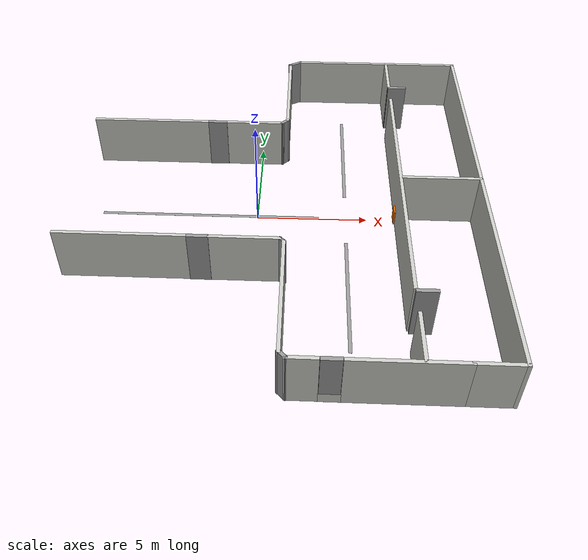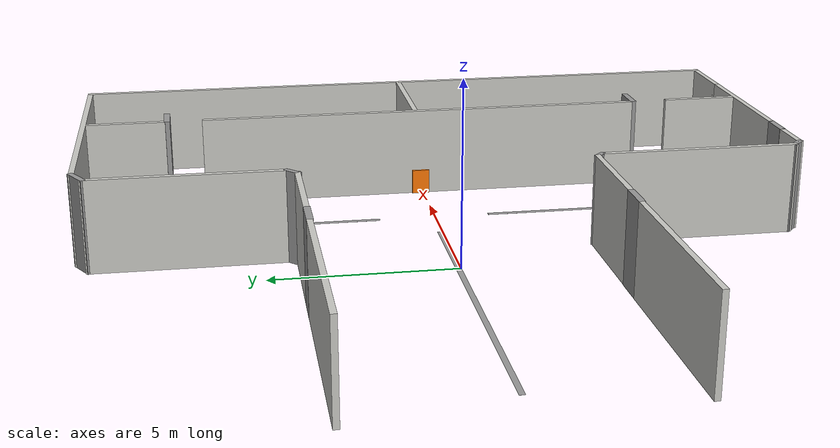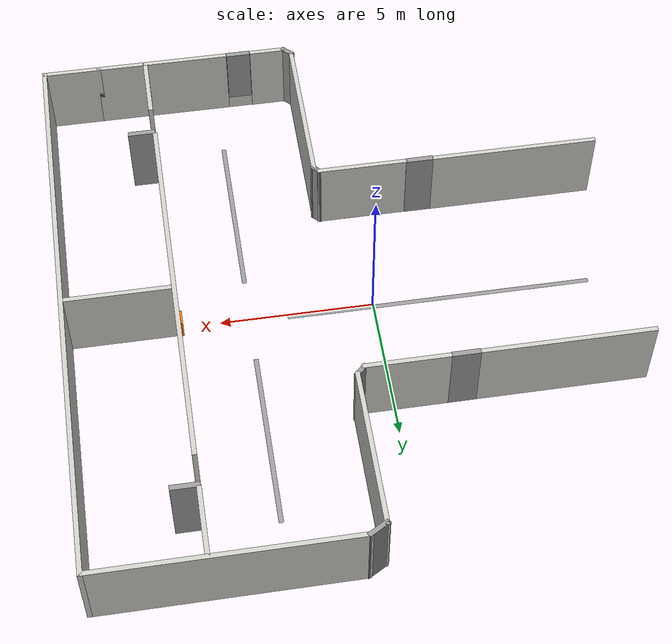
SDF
<?xml version='1.0'?>
<sdf version='1.7'>
  <model name='hosp.world'>
    <pose>0.907925 0.036457 0 0 -0 0</pose>
    <link name='Door_0'>
      <collision name='Door_0_Collision'>
        <geometry>
          <box>
            <size>0.9 0.17 2.5</size>
          </box>
        </geometry>
        <pose>0 0 1.25 0 -0 0</pose>
      </collision>
      <visual name='Door_0_Visual'>
        <pose>0 0 1.25 0 -0 0</pose>
        <geometry>
          <box>
            <size>0.9 0.17 2.5</size>
          </box>
        </geometry>
        <material>
          <script>
            <uri>file://media/materials/scripts/gazebo.material</uri>
            <name>Gazebo/Grey</name>
          </script>
        </material>
      </visual>
      <pose>-3.0738 -3.88285 0 0 -0 0</pose>
    </link>
    <link name='Door_1'>
      <collision name='Door_1_Collision'>
        <geometry>
          <box>
            <size>0.9 0.17 2.5</size>
          </box>
        </geometry>
        <pose>0 0 1.25 0 -0 0</pose>
      </collision>
      <visual name='Door_1_Visual'>
        <pose>0 0 1.25 0 -0 0</pose>
        <geometry>
          <box>
            <size>0.9 0.17 2.5</size>
          </box>
        </geometry>
        <material>
          <script>
            <uri>file://media/materials/scripts/gazebo.material</uri>
            <name>Gazebo/Grey</name>
          </script>
        </material>
      </visual>
      <pose>-3.03527 4.01633 0 0 -0 0</pose>
    </link>
    <link name='Door_2'>
      <collision name='Door_2_Collision'>
        <geometry>
          <box>
            <size>0.9 0.17 2.5</size>
          </box>
        </geometry>
        <pose>0 0 1.25 0 -0 0</pose>
      </collision>
      <visual name='Door_2_Visual'>
        <pose>0 0 1.25 0 -0 0</pose>
        <geometry>
          <box>
            <size>0.9 0.17 2.5</size>
          </box>
        </geometry>
        <material>
          <script>
            <uri>file://media/materials/scripts/gazebo.material</uri>
            <name>Gazebo/Grey</name>
          </script>
        </material>
      </visual>
      <pose>5.88274 -6.45803 0 0 -0 0</pose>
    </link>
    <link name='Door_3'>
      <collision name='Door_3_Collision'>
        <geometry>
          <box>
            <size>0.9 0.17 2.5</size>
          </box>
        </geometry>
        <pose>0 0 1.25 0 -0 0</pose>
      </collision>
      <visual name='Door_3_Visual'>
        <pose>0 0 1.25 0 -0 0</pose>
        <geometry>
          <box>
            <size>0.9 0.17 2.5</size>
          </box>
        </geometry>
        <material>
          <script>
            <uri>file://media/materials/scripts/gazebo.material</uri>
            <name>Gazebo/Grey</name>
          </script>
        </material>
      </visual>
      <pose>5.82192 7.34292 0 0 -0 0</pose>
    </link>
    <link name='Wall_0'>
      <collision name='Wall_0_Collision'>
        <geometry>
          <box>
            <size>5.5 0.15 2.5</size>
          </box>
        </geometry>
        <pose>0 0 1.25 0 -0 0</pose>
      </collision>
      <visual name='Wall_0_Visual'>
        <pose>0 0 1.25 0 -0 0</pose>
        <geometry>
          <box>
            <size>5.5 0.15 2.5</size>
          </box>
        </geometry>
        <material>
          <script>
            <uri>file://media/materials/scripts/gazebo.material</uri>
            <name>Gazebo/CeilingTiled</name>
          </script>
          <ambient>1 1 1 1</ambient>
        </material>
        <meta>
          <layer>0</layer>
        </meta>
      </visual>
      <pose>-6.27423 -3.87046 0 0 -0 0</pose>
    </link>
    <link name='Wall_11'>
      <collision name='Wall_11_Collision'>
        <geometry>
          <box>
            <size>5.5 0.15 2.5</size>
          </box>
        </geometry>
        <pose>0 0 1.25 0 -0 0</pose>
      </collision>
      <visual name='Wall_11_Visual'>
        <pose>0 0 1.25 0 -0 0</pose>
        <geometry>
          <box>
            <size>5.5 0.15 2.5</size>
          </box>
        </geometry>
        <material>
          <script>
            <uri>file://media/materials/scripts/gazebo.material</uri>
            <name>Gazebo/CeilingTiled</name>
          </script>
          <ambient>1 1 1 1</ambient>
        </material>
        <meta>
          <layer>0</layer>
        </meta>
      </visual>
      <pose>0.424387 -6.74646 0 0 -0 -1.5708</pose>
    </link>
    <link name='Wall_13'>
      <collision name='Wall_13_Collision'>
        <geometry>
          <box>
            <size>0.5 0.15 2.5</size>
          </box>
        </geometry>
        <pose>0 0 1.25 0 -0 0</pose>
      </collision>
      <visual name='Wall_13_Visual'>
        <pose>0 0 1.25 0 -0 0</pose>
        <geometry>
          <box>
            <size>0.5 0.15 2.5</size>
          </box>
        </geometry>
        <material>
          <script>
            <uri>file://media/materials/scripts/gazebo.material</uri>
            <name>Gazebo/Grey</name>
          </script>
          <ambient>1 1 1 1</ambient>
        </material>
        <meta>
          <layer>0</layer>
        </meta>
      </visual>
      <pose>0.548131 -9.54521 0 0 -0 -0.785398</pose>
    </link>
    <link name='Wall_14'>
      <collision name='Wall_14_Collision'>
        <geometry>
          <box>
            <size>1.25 0.15 2.5</size>
          </box>
        </geometry>
        <pose>0 0 1.25 0 -0 0</pose>
      </collision>
      <visual name='Wall_14_Visual'>
        <pose>0 0 1.25 0 -0 0</pose>
        <geometry>
          <box>
            <size>1.25 0.15 2.5</size>
          </box>
        </geometry>
        <material>
          <script>
            <uri>file://media/materials/scripts/gazebo.material</uri>
            <name>Gazebo/CeilingTiled</name>
          </script>
          <ambient>1 1 1 1</ambient>
        </material>
        <meta>
          <layer>0</layer>
        </meta>
      </visual>
      <pose>1.22188 -9.66895 0 0 -0 0</pose>
    </link>
    <link name='Wall_17'>
      <collision name='Wall_17_Collision'>
        <geometry>
          <box>
            <size>4.5 0.15 2.5</size>
          </box>
        </geometry>
        <pose>0 0 1.25 0 -0 0</pose>
      </collision>
      <visual name='Wall_17_Visual'>
        <pose>0 0 1.25 0 -0 0</pose>
        <geometry>
          <box>
            <size>4.5 0.15 2.5</size>
          </box>
        </geometry>
        <material>
          <script>
            <uri>file://media/materials/scripts/gazebo.material</uri>
            <name>Gazebo/CeilingTiled</name>
          </script>
          <ambient>1 1 1 1</ambient>
        </material>
        <meta>
          <layer>0</layer>
        </meta>
      </visual>
      <pose>4.92423 -9.67743 0 0 -0 0</pose>
    </link>
    <link name='Wall_18'>
      <collision name='Wall_18_Collision'>
        <geometry>
          <box>
            <size>2 0.15 2.5</size>
          </box>
        </geometry>
        <pose>0 0 1.25 0 -0 0</pose>
      </collision>
      <visual name='Wall_18_Visual'>
        <pose>0 0 1.25 0 -0 0</pose>
        <geometry>
          <box>
            <size>2 0.15 2.5</size>
          </box>
        </geometry>
        <material>
          <script>
            <uri>file://media/materials/scripts/gazebo.material</uri>
            <name>Gazebo/CeilingTiled</name>
          </script>
          <ambient>1 1 1 1</ambient>
        </material>
        <meta>
          <layer>0</layer>
        </meta>
      </visual>
      <pose>8.02423 -9.67743 0 0 -0 0</pose>
    </link>
    <link name='Wall_19'>
      <collision name='Wall_19_Collision'>
        <geometry>
          <box>
            <size>19.5 0.15 2.5</size>
          </box>
        </geometry>
        <pose>0 0 1.25 0 -0 0</pose>
      </collision>
      <visual name='Wall_19_Visual'>
        <pose>0 0 1.25 0 -0 0</pose>
        <geometry>
          <box>
            <size>19.5 0.15 2.5</size>
          </box>
        </geometry>
        <material>
          <script>
            <uri>file://media/materials/scripts/gazebo.material</uri>
            <name>Gazebo/CeilingTiled</name>
          </script>
          <ambient>1 1 1 1</ambient>
        </material>
        <meta>
          <layer>0</layer>
        </meta>
      </visual>
      <pose>8.94923 -0.002434 0 0 -0 1.5708</pose>
    </link>
    <link name='Wall_20'>
      <collision name='Wall_20_Collision'>
        <geometry>
          <box>
            <size>8.25 0.15 2.5</size>
          </box>
        </geometry>
        <pose>0 0 1.25 0 -0 0</pose>
      </collision>
      <visual name='Wall_20_Visual'>
        <pose>0 0 1.25 0 -0 0</pose>
        <geometry>
          <box>
            <size>8.25 0.15 2.5</size>
          </box>
        </geometry>
        <material>
          <script>
            <uri>file://media/materials/scripts/gazebo.material</uri>
            <name>Gazebo/CeilingTiled</name>
          </script>
          <ambient>1 1 1 1</ambient>
        </material>
        <meta>
          <layer>0</layer>
        </meta>
      </visual>
      <pose>4.89923 9.67257 0 0 -0 3.14159</pose>
    </link>
    <link name='Wall_21'>
      <collision name='Wall_21_Collision'>
        <geometry>
          <box>
            <size>0.75 0.15 2.5</size>
          </box>
        </geometry>
        <pose>0 0 1.25 0 -0 0</pose>
      </collision>
      <visual name='Wall_21_Visual'>
        <pose>0 0 1.25 0 -0 0</pose>
        <geometry>
          <box>
            <size>0.75 0.15 2.5</size>
          </box>
        </geometry>
        <material>
          <script>
            <uri>file://media/materials/scripts/gazebo.material</uri>
            <name>Gazebo/Grey</name>
          </script>
          <ambient>1 1 1 1</ambient>
        </material>
        <meta>
          <layer>0</layer>
        </meta>
      </visual>
      <pose>0.589423 9.52257 0 0 -0 -2.61799</pose>
    </link>
    <link name='Wall_22'>
      <collision name='Wall_22_Collision'>
        <geometry>
          <box>
            <size>5.25 0.15 2.5</size>
          </box>
        </geometry>
        <pose>0 0 1.25 0 -0 0</pose>
      </collision>
      <visual name='Wall_22_Visual'>
        <pose>0 0 1.25 0 -0 0</pose>
        <geometry>
          <box>
            <size>5.25 0.15 2.5</size>
          </box>
        </geometry>
        <material>
          <script>
            <uri>file://media/materials/scripts/gazebo.material</uri>
            <name>Gazebo/CeilingTiled</name>
          </script>
          <ambient>1 1 1 1</ambient>
        </material>
        <meta>
          <layer>0</layer>
        </meta>
      </visual>
      <pose>0.329615 6.82257 0 0 -0 -1.5708</pose>
    </link>
    <link name='Wall_23'>
      <collision name='Wall_23_Collision'>
        <geometry>
          <box>
            <size>0.5 0.15 2.5</size>
          </box>
        </geometry>
        <pose>0 0 1.25 0 -0 0</pose>
      </collision>
      <visual name='Wall_23_Visual'>
        <pose>0 0 1.25 0 -0 0</pose>
        <geometry>
          <box>
            <size>0.5 0.15 2.5</size>
          </box>
        </geometry>
        <material>
          <script>
            <uri>file://media/materials/scripts/gazebo.material</uri>
            <name>Gazebo/Grey</name>
          </script>
          <ambient>1 1 1 1</ambient>
        </material>
        <meta>
          <layer>0</layer>
        </meta>
      </visual>
      <pose>0.205871 4.14882 0 0 -0 -2.35619</pose>
    </link>
    <link name='Wall_24'>
      <collision name='Wall_24_Collision'>
        <geometry>
          <box>
            <size>2.75 0.15 2.5</size>
          </box>
        </geometry>
        <pose>0 0 1.25 0 -0 0</pose>
      </collision>
      <visual name='Wall_24_Visual'>
        <pose>0 0 1.25 0 -0 0</pose>
        <geometry>
          <box>
            <size>2.75 0.15 2.5</size>
          </box>
        </geometry>
        <material>
          <script>
            <uri>file://media/materials/scripts/gazebo.material</uri>
            <name>Gazebo/CeilingTiled</name>
          </script>
          <ambient>1 1 1 1</ambient>
        </material>
        <meta>
          <layer>0</layer>
        </meta>
      </visual>
      <pose>-1.21787 4.02508 0 0 -0 3.14159</pose>
    </link>
    <link name='Wall_26'>
      <collision name='Wall_26_Collision'>
        <geometry>
          <box>
            <size>5.5 0.15 2.5</size>
          </box>
        </geometry>
        <pose>0 0 1.25 0 -0 0</pose>
      </collision>
      <visual name='Wall_26_Visual'>
        <pose>0 0 1.25 0 -0 0</pose>
        <geometry>
          <box>
            <size>5.5 0.15 2.5</size>
          </box>
        </geometry>
        <material>
          <script>
            <uri>file://media/materials/scripts/gazebo.material</uri>
            <name>Gazebo/CeilingTiled</name>
          </script>
          <ambient>1 1 1 1</ambient>
        </material>
        <meta>
          <layer>0</layer>
        </meta>
      </visual>
      <pose>-6.22445 4.02389 0 0 -0 3.14159</pose>
    </link>
    <link name='Wall_3'>
      <collision name='Wall_3_Collision'>
        <geometry>
          <box>
            <size>3 0.15 2.5</size>
          </box>
        </geometry>
        <pose>0 0 1.25 0 -0 0</pose>
      </collision>
      <visual name='Wall_3_Visual'>
        <pose>0 0 1.25 0 -0 0</pose>
        <geometry>
          <box>
            <size>3 0.15 2.5</size>
          </box>
        </geometry>
        <material>
          <script>
            <uri>file://media/materials/scripts/gazebo.material</uri>
            <name>Gazebo/CeilingTiled</name>
          </script>
          <ambient>1 1 1 1</ambient>
        </material>
        <meta>
          <layer>0</layer>
        </meta>
      </visual>
      <pose>-1.16881 -3.88285 0 0 -0 0</pose>
    </link>
    <link name='Wall_32'>
      <collision name='Wall_32_Collision'>
        <geometry>
          <box>
            <size>2.25 0.15 2.5</size>
          </box>
        </geometry>
        <pose>0 0 1.25 0 -0 0</pose>
      </collision>
      <visual name='Wall_32_Visual'>
        <pose>0 0 1.25 0 -0 0</pose>
        <geometry>
          <box>
            <size>2.25 0.15 2.5</size>
          </box>
        </geometry>
        <material>
          <script>
            <uri>file://media/materials/scripts/gazebo.material</uri>
            <name>Gazebo/CeilingTiled</name>
          </script>
          <ambient>1 1 1 1</ambient>
        </material>
        <meta>
          <layer>0</layer>
        </meta>
      </visual>
      <pose>5.48275 -8.58787 0 0 -0 1.5708</pose>
    </link>
    <link name='Wall_35'>
      <collision name='Wall_35_Collision'>
        <geometry>
          <box>
            <size>12.75 0.15 2.5</size>
          </box>
        </geometry>
        <pose>0 0 1.25 0 -0 0</pose>
      </collision>
      <visual name='Wall_35_Visual'>
        <pose>0 0 1.25 0 -0 0</pose>
        <geometry>
          <box>
            <size>12.75 0.15 2.5</size>
          </box>
        </geometry>
        <material>
          <script>
            <uri>file://media/materials/scripts/gazebo.material</uri>
            <name>Gazebo/CeilingTiled</name>
          </script>
          <ambient>1 1 1 1</ambient>
        </material>
        <meta>
          <layer>0</layer>
        </meta>
      </visual>
      <pose>5.43674 -0.028369 0 0 -0 1.5708</pose>
    </link>
    <link name='Wall_39'>
      <collision name='Wall_39_Collision'>
        <geometry>
          <box>
            <size>2.25 0.15 2.5</size>
          </box>
        </geometry>
        <pose>0 0 1.25 0 -0 0</pose>
      </collision>
      <visual name='Wall_39_Visual'>
        <pose>0 0 1.25 0 -0 0</pose>
        <geometry>
          <box>
            <size>2.25 0.15 2.5</size>
          </box>
        </geometry>
        <material>
          <script>
            <uri>file://media/materials/scripts/gazebo.material</uri>
            <name>Gazebo/CeilingTiled</name>
          </script>
          <ambient>1 1 1 1</ambient>
        </material>
        <meta>
          <layer>0</layer>
        </meta>
      </visual>
      <pose>5.42154 8.51583 0 0 -0 1.5708</pose>
    </link>
    <link name='Wall_42'>
      <collision name='Wall_42_Collision'>
        <geometry>
          <box>
            <size>3.5 0.15 2.5</size>
          </box>
        </geometry>
        <pose>0 0 1.25 0 -0 0</pose>
      </collision>
      <visual name='Wall_42_Visual'>
        <pose>0 0 1.25 0 -0 0</pose>
        <geometry>
          <box>
            <size>3.5 0.15 2.5</size>
          </box>
        </geometry>
        <material>
          <script>
            <uri>file://media/materials/scripts/gazebo.material</uri>
            <name>Gazebo/CeilingTiled</name>
          </script>
          <ambient>1 1 1 1</ambient>
        </material>
        <meta>
          <layer>0</layer>
        </meta>
      </visual>
      <pose>7.24281 0.164825 0 0 -0 0</pose>
    </link>
    <link name='Wall_46'>
      <collision name='Wall_46_Collision'>
        <geometry>
          <box>
            <size>0.85 0.15 0.5</size>
          </box>
        </geometry>
        <pose>0 0 0.25 0 -0 0</pose>
      </collision>
      <visual name='Wall_46_Visual'>
        <pose>0 0 0.25 0 -0 0</pose>
        <geometry>
          <box>
            <size>0.85 0.15 0.5</size>
          </box>
        </geometry>
        <material>
          <script>
            <uri>file://media/materials/scripts/gazebo.material</uri>
            <name>Gazebo/CeilingTiled</name>
          </script>
          <ambient>1 1 1 1</ambient>
        </material>
        <meta>
          <layer>0</layer>
        </meta>
      </visual>
      <pose>2.26378 -9.67758 0 0 -0 0</pose>
    </link>
    <link name='Wall_48'>
      <collision name='Wall_48_Collision'>
        <geometry>
          <box>
            <size>0.5 0.15 0.7</size>
          </box>
        </geometry>
        <pose>0 0 0.35 0 -0 0</pose>
      </collision>
      <visual name='Wall_48_Visual'>
        <pose>0 0 0.35 0 -0 0</pose>
        <geometry>
          <box>
            <size>0.5 0.15 0.7</size>
          </box>
        </geometry>
        <material>
          <script>
            <uri>file://media/materials/scripts/gazebo.material</uri>
            <name>Gazebo/Grey</name>
          </script>
          <ambient>0.996078 0.47451 0.0196078 1</ambient>
        </material>
        <meta>
          <layer>0</layer>
        </meta>
      </visual>
      <pose>5.36766 0.024862 0 0 -0 -1.5708</pose>
    </link>
    <link name='Wall_6'>
      <collision name='Wall_6_Collision'>
        <geometry>
          <box>
            <size>0.383536 0.15 2.5</size>
          </box>
        </geometry>
        <pose>0 0 1.25 0 -0 0</pose>
      </collision>
      <visual name='Wall_6_Visual'>
        <pose>0 0 1.25 0 -0 0</pose>
        <geometry>
          <box>
            <size>0.383536 0.15 2.5</size>
          </box>
        </geometry>
        <material>
          <script>
            <uri>file://media/materials/scripts/gazebo.material</uri>
            <name>Gazebo/Grey</name>
          </script>
          <ambient>1 1 1 1</ambient>
        </material>
        <meta>
          <layer>0</layer>
        </meta>
      </visual>
      <pose>0.340287 -3.96386 0 0 -0 -0.76666</pose>
    </link>
    <link name='Wall_71'>
      <collision name='Wall_71_Collision'>
        <geometry>
          <box>
            <size>10 0.15 0.001</size>
          </box>
        </geometry>
        <pose>0 0 0.0005 0 -0 0</pose>
      </collision>
      <visual name='Wall_71_Visual'>
        <pose>0 0 0.0005 0 -0 0</pose>
        <geometry>
          <box>
            <size>10 0.15 0.001</size>
          </box>
        </geometry>
        <material>
          <script>
            <uri>file://media/materials/scripts/gazebo.material</uri>
            <name>Gazebo/Grey</name>
          </script>
          <ambient>1 1 1 1</ambient>
        </material>
        <meta>
          <layer>0</layer>
        </meta>
      </visual>
      <pose>-3.09793 0.040543 0 0 -0 0</pose>
    </link>
    <link name='Wall_73'>
      <collision name='Wall_73_Collision'>
        <geometry>
          <box>
            <size>6 0.15 0.001</size>
          </box>
        </geometry>
        <pose>0 0 0.0005 0 -0 0</pose>
      </collision>
      <visual name='Wall_73_Visual'>
        <pose>0 0 0.0005 0 -0 0</pose>
        <geometry>
          <box>
            <size>6 0.15 0.001</size>
          </box>
        </geometry>
        <material>
          <script>
            <uri>file://media/materials/scripts/gazebo.material</uri>
            <name>Gazebo/Grey</name>
          </script>
          <ambient>1 1 1 1</ambient>
        </material>
        <meta>
          <layer>0</layer>
        </meta>
      </visual>
      <pose>3.12226 -4.56142 0 0 -0 1.5708</pose>
    </link>
    <link name='Wall_75'>
      <collision name='Wall_75_Collision'>
        <geometry>
          <box>
            <size>6 0.15 0.001</size>
          </box>
        </geometry>
        <pose>0 0 0.0005 0 -0 0</pose>
      </collision>
      <visual name='Wall_75_Visual'>
        <pose>0 0 0.0005 0 -0 0</pose>
        <geometry>
          <box>
            <size>6 0.15 0.001</size>
          </box>
        </geometry>
        <material>
          <script>
            <uri>file://media/materials/scripts/gazebo.material</uri>
            <name>Gazebo/Grey</name>
          </script>
          <ambient>1 1 1 1</ambient>
        </material>
        <meta>
          <layer>0</layer>
        </meta>
      </visual>
      <pose>3.13307 4.54354 0 0 -0 1.5708</pose>
    </link>
    <link name='Window_0'>
      <collision name='Window_0_Collision'>
        <geometry>
          <box>
            <size>0.8 0.17 2</size>
          </box>
        </geometry>
        <pose>0 0 1 0 -0 0</pose>
      </collision>
      <visual name='Window_0_Visual'>
        <pose>0 0 1 0 -0 0</pose>
        <geometry>
          <box>
            <size>0.8 0.17 2</size>
          </box>
        </geometry>
        <material>
          <script>
            <uri>file://media/materials/scripts/gazebo.material</uri>
            <name>Gazebo/Grey</name>
          </script>
        </material>
      </visual>
      <pose>2.26221 -9.67567 0.5 0 -0 0</pose>
    </link>
    <static>1</static>
  </model>
</sdf>
